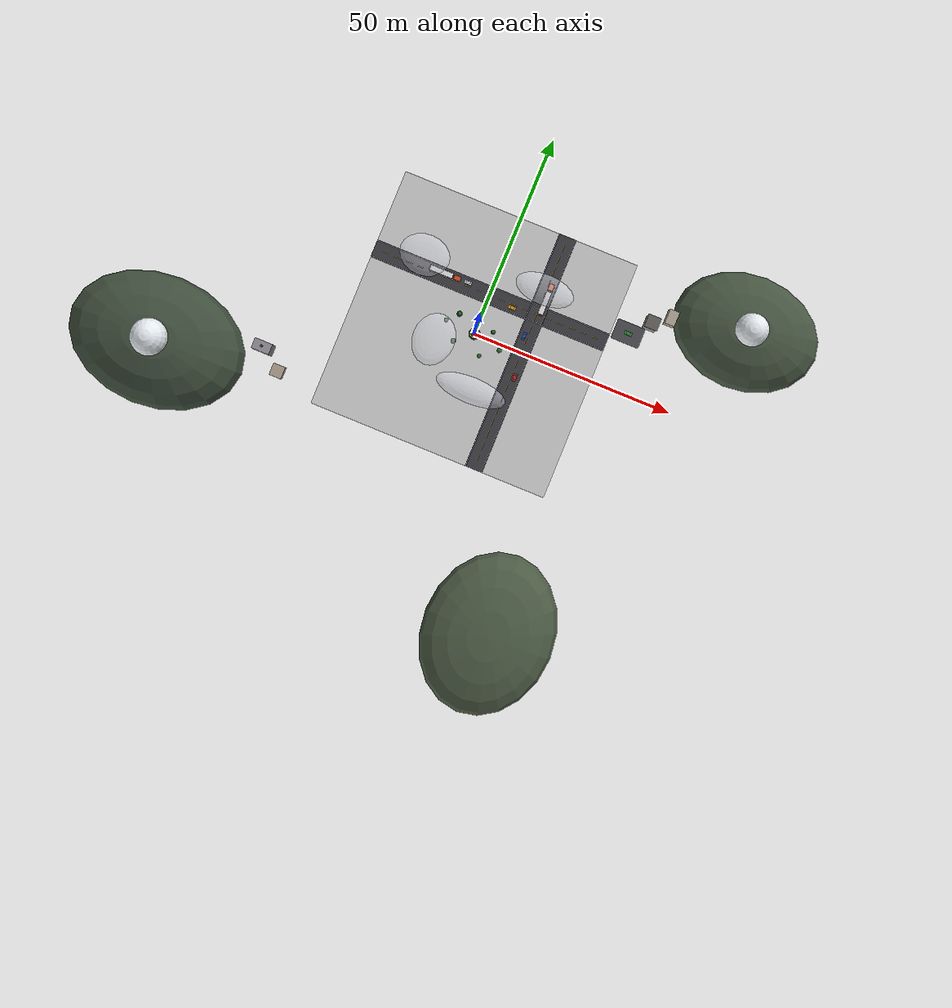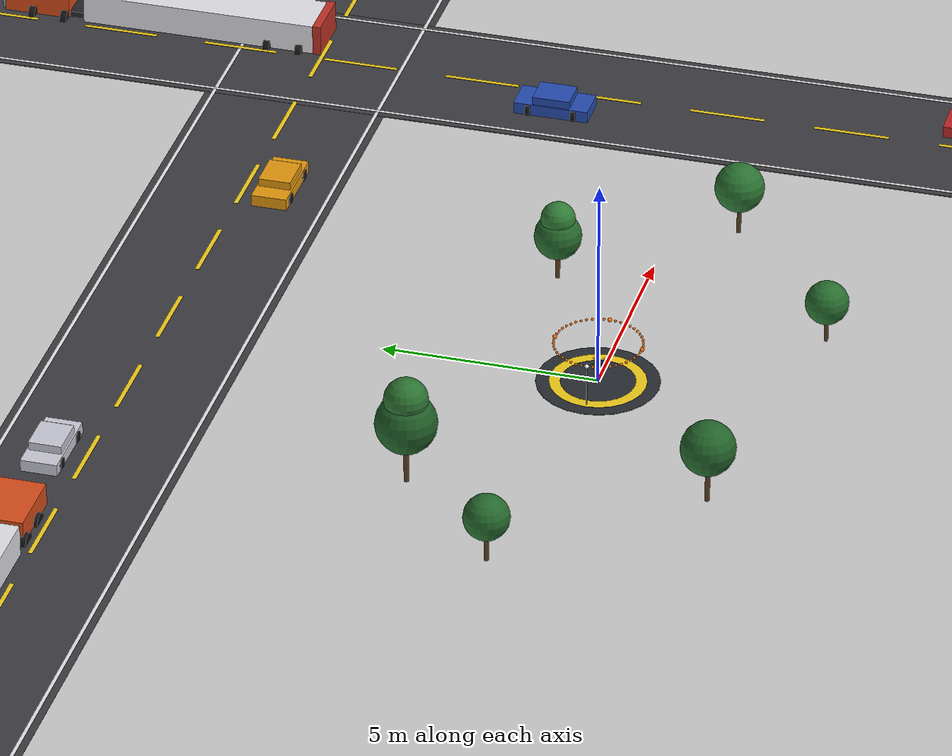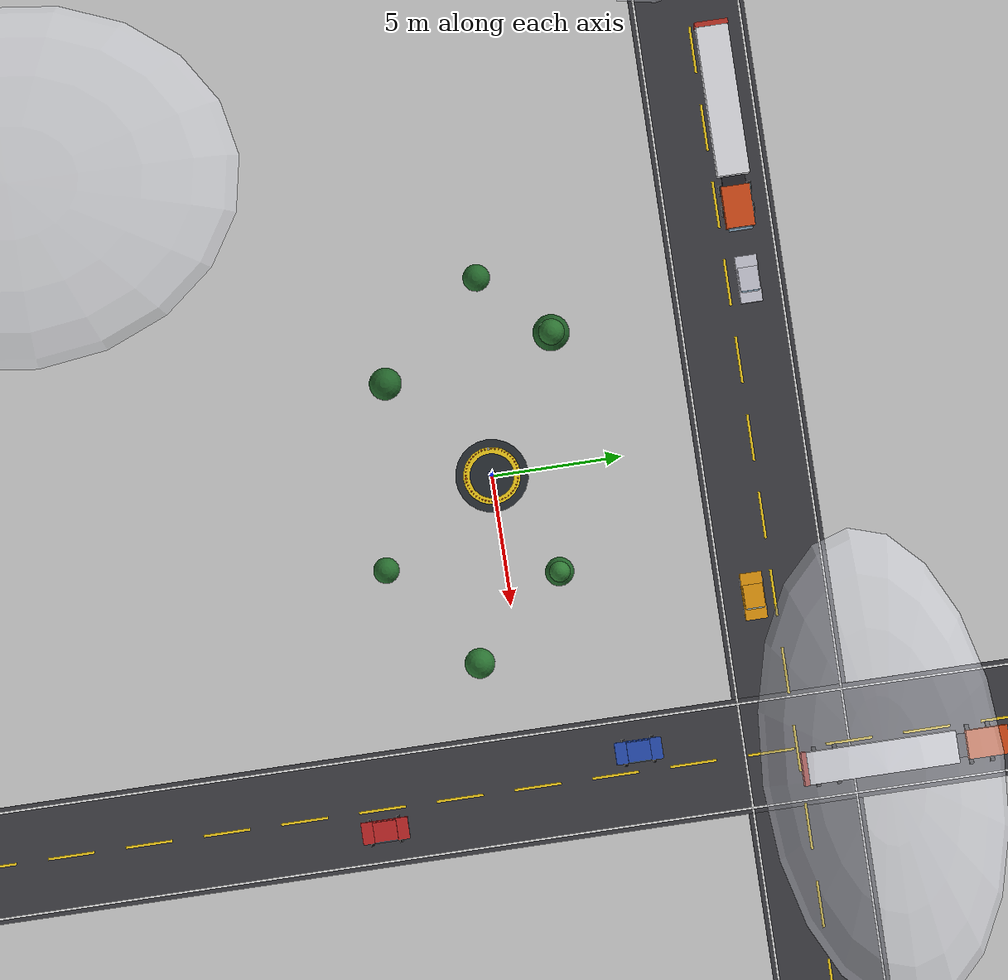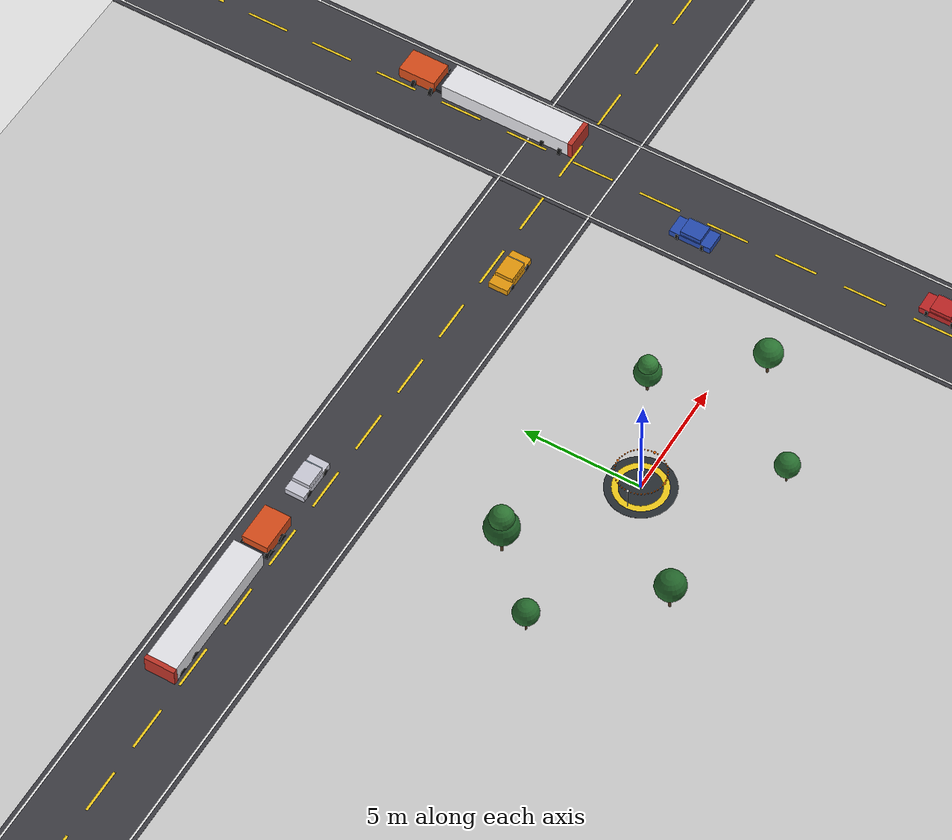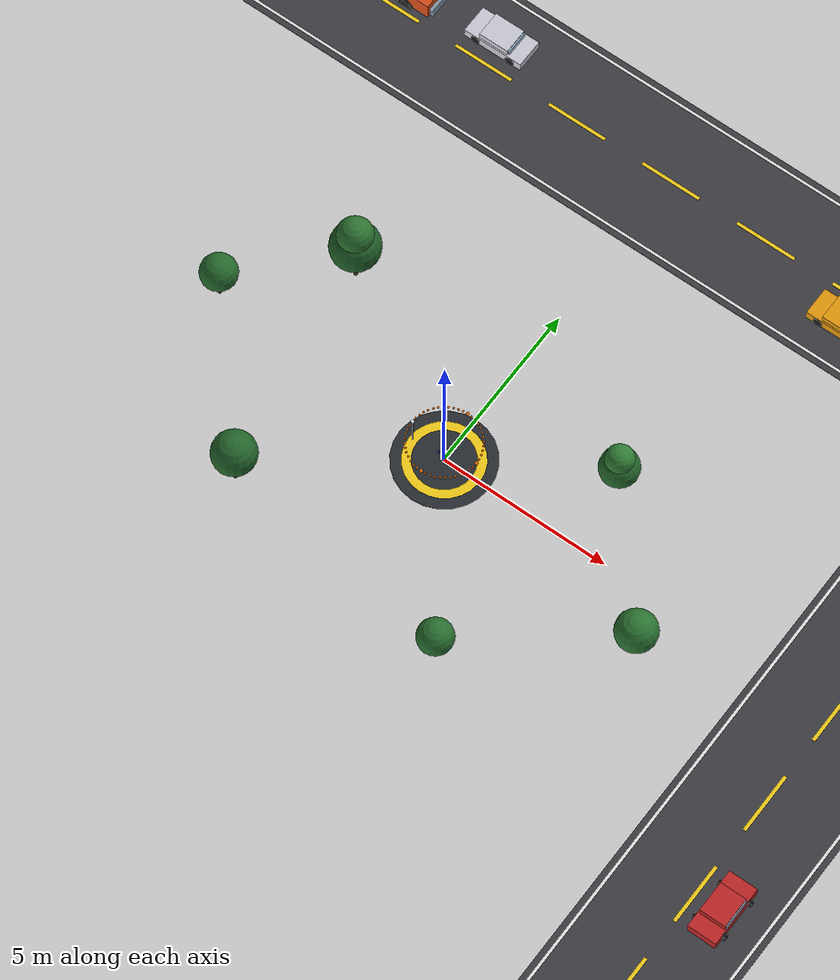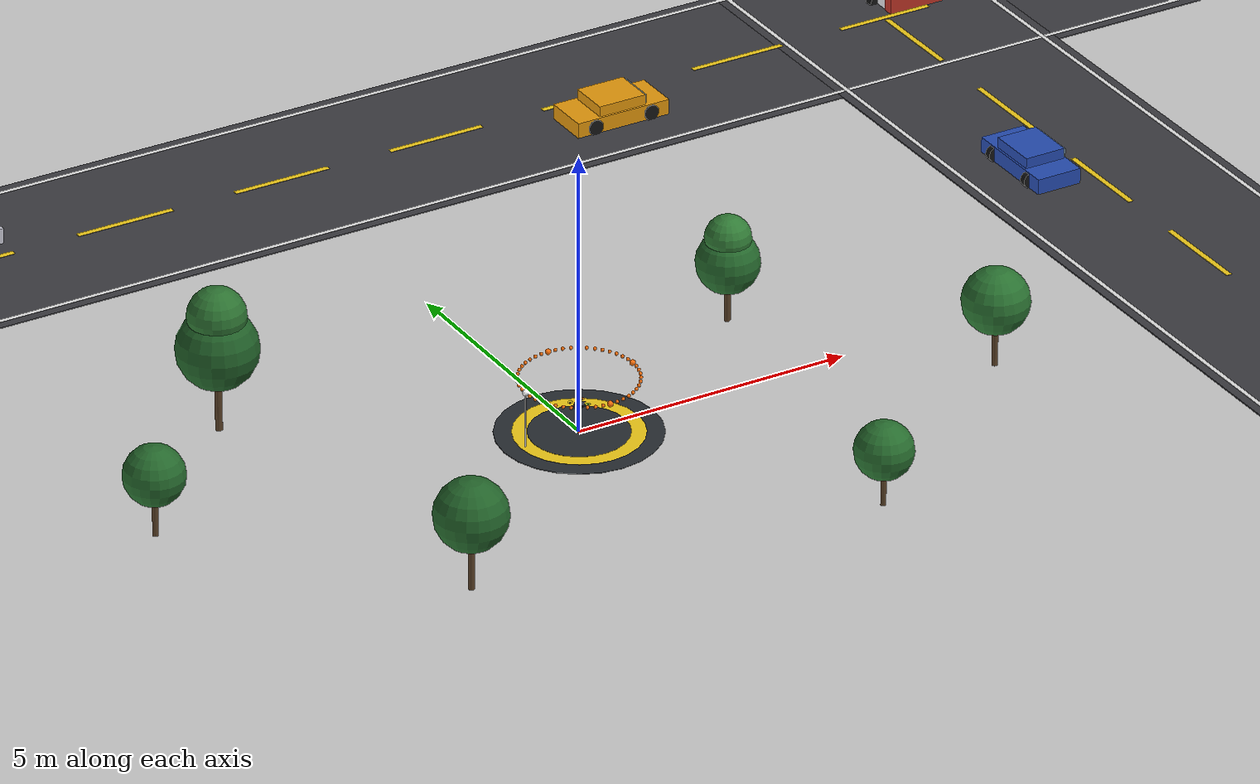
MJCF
<mujoco model="flatness_circle_scene">
  <include file="../sim/mujoco/quadrotor.xml"/>
  <worldbody>
    <!-- start point marker (-1, 0): white pole + cap -->
    <geom name="start_pole" type="cylinder" size="0.015 0.5" pos="-1 0 0.5" rgba="0.9 0.9 0.9 1" contype="0" conaffinity="0"/>
    <geom name="start_cap" type="sphere" size="0.05" pos="-1 0 1.0" rgba="1 1 1 1" contype="0" conaffinity="0"/>
    <!-- reference circle, radius 1 m at altitude 1 m -->
    <geom name="ref_c0" type="sphere" pos="-1.0000 0.0000 1.0" size="0.05" rgba="1 0.45 0.05 1" contype="0" conaffinity="0"/>
    <geom name="ref_c1" type="sphere" pos="-0.9914 0.1305 1.0" size="0.03" rgba="1 0.45 0.05 1" contype="0" conaffinity="0"/>
    <geom name="ref_c2" type="sphere" pos="-0.9659 0.2588 1.0" size="0.03" rgba="1 0.45 0.05 1" contype="0" conaffinity="0"/>
    <geom name="ref_c3" type="sphere" pos="-0.9239 0.3827 1.0" size="0.03" rgba="1 0.45 0.05 1" contype="0" conaffinity="0"/>
    <geom name="ref_c4" type="sphere" pos="-0.8660 0.5000 1.0" size="0.03" rgba="1 0.45 0.05 1" contype="0" conaffinity="0"/>
    <geom name="ref_c5" type="sphere" pos="-0.7934 0.6088 1.0" size="0.03" rgba="1 0.45 0.05 1" contype="0" conaffinity="0"/>
    <geom name="ref_c6" type="sphere" pos="-0.7071 0.7071 1.0" size="0.03" rgba="1 0.45 0.05 1" contype="0" conaffinity="0"/>
    <geom name="ref_c7" type="sphere" pos="-0.6088 0.7934 1.0" size="0.03" rgba="1 0.45 0.05 1" contype="0" conaffinity="0"/>
    <geom name="ref_c8" type="sphere" pos="-0.5000 0.8660 1.0" size="0.03" rgba="1 0.45 0.05 1" contype="0" conaffinity="0"/>
    <geom name="ref_c9" type="sphere" pos="-0.3827 0.9239 1.0" size="0.03" rgba="1 0.45 0.05 1" contype="0" conaffinity="0"/>
    <geom name="ref_c10" type="sphere" pos="-0.2588 0.9659 1.0" size="0.03" rgba="1 0.45 0.05 1" contype="0" conaffinity="0"/>
    <geom name="ref_c11" type="sphere" pos="-0.1305 0.9914 1.0" size="0.03" rgba="1 0.45 0.05 1" contype="0" conaffinity="0"/>
    <geom name="ref_c12" type="sphere" pos="-0.0000 1.0000 1.0" size="0.05" rgba="1 0.45 0.05 1" contype="0" conaffinity="0"/>
    <geom name="ref_c13" type="sphere" pos="0.1305 0.9914 1.0" size="0.03" rgba="1 0.45 0.05 1" contype="0" conaffinity="0"/>
    <geom name="ref_c14" type="sphere" pos="0.2588 0.9659 1.0" size="0.03" rgba="1 0.45 0.05 1" contype="0" conaffinity="0"/>
    <geom name="ref_c15" type="sphere" pos="0.3827 0.9239 1.0" size="0.03" rgba="1 0.45 0.05 1" contype="0" conaffinity="0"/>
    <geom name="ref_c16" type="sphere" pos="0.5000 0.8660 1.0" size="0.03" rgba="1 0.45 0.05 1" contype="0" conaffinity="0"/>
    <geom name="ref_c17" type="sphere" pos="0.6088 0.7934 1.0" size="0.03" rgba="1 0.45 0.05 1" contype="0" conaffinity="0"/>
    <geom name="ref_c18" type="sphere" pos="0.7071 0.7071 1.0" size="0.03" rgba="1 0.45 0.05 1" contype="0" conaffinity="0"/>
    <geom name="ref_c19" type="sphere" pos="0.7934 0.6088 1.0" size="0.03" rgba="1 0.45 0.05 1" contype="0" conaffinity="0"/>
    <geom name="ref_c20" type="sphere" pos="0.8660 0.5000 1.0" size="0.03" rgba="1 0.45 0.05 1" contype="0" conaffinity="0"/>
    <geom name="ref_c21" type="sphere" pos="0.9239 0.3827 1.0" size="0.03" rgba="1 0.45 0.05 1" contype="0" conaffinity="0"/>
    <geom name="ref_c22" type="sphere" pos="0.9659 0.2588 1.0" size="0.03" rgba="1 0.45 0.05 1" contype="0" conaffinity="0"/>
    <geom name="ref_c23" type="sphere" pos="0.9914 0.1305 1.0" size="0.03" rgba="1 0.45 0.05 1" contype="0" conaffinity="0"/>
    <geom name="ref_c24" type="sphere" pos="1.0000 0.0000 1.0" size="0.05" rgba="1 0.45 0.05 1" contype="0" conaffinity="0"/>
    <geom name="ref_c25" type="sphere" pos="0.9914 -0.1305 1.0" size="0.03" rgba="1 0.45 0.05 1" contype="0" conaffinity="0"/>
    <geom name="ref_c26" type="sphere" pos="0.9659 -0.2588 1.0" size="0.03" rgba="1 0.45 0.05 1" contype="0" conaffinity="0"/>
    <geom name="ref_c27" type="sphere" pos="0.9239 -0.3827 1.0" size="0.03" rgba="1 0.45 0.05 1" contype="0" conaffinity="0"/>
    <geom name="ref_c28" type="sphere" pos="0.8660 -0.5000 1.0" size="0.03" rgba="1 0.45 0.05 1" contype="0" conaffinity="0"/>
    <geom name="ref_c29" type="sphere" pos="0.7934 -0.6088 1.0" size="0.03" rgba="1 0.45 0.05 1" contype="0" conaffinity="0"/>
    <geom name="ref_c30" type="sphere" pos="0.7071 -0.7071 1.0" size="0.03" rgba="1 0.45 0.05 1" contype="0" conaffinity="0"/>
    <geom name="ref_c31" type="sphere" pos="0.6088 -0.7934 1.0" size="0.03" rgba="1 0.45 0.05 1" contype="0" conaffinity="0"/>
    <geom name="ref_c32" type="sphere" pos="0.5000 -0.8660 1.0" size="0.03" rgba="1 0.45 0.05 1" contype="0" conaffinity="0"/>
    <geom name="ref_c33" type="sphere" pos="0.3827 -0.9239 1.0" size="0.03" rgba="1 0.45 0.05 1" contype="0" conaffinity="0"/>
    <geom name="ref_c34" type="sphere" pos="0.2588 -0.9659 1.0" size="0.03" rgba="1 0.45 0.05 1" contype="0" conaffinity="0"/>
    <geom name="ref_c35" type="sphere" pos="0.1305 -0.9914 1.0" size="0.03" rgba="1 0.45 0.05 1" contype="0" conaffinity="0"/>
    <geom name="ref_c36" type="sphere" pos="0.0000 -1.0000 1.0" size="0.05" rgba="1 0.45 0.05 1" contype="0" conaffinity="0"/>
    <geom name="ref_c37" type="sphere" pos="-0.1305 -0.9914 1.0" size="0.03" rgba="1 0.45 0.05 1" contype="0" conaffinity="0"/>
    <geom name="ref_c38" type="sphere" pos="-0.2588 -0.9659 1.0" size="0.03" rgba="1 0.45 0.05 1" contype="0" conaffinity="0"/>
    <geom name="ref_c39" type="sphere" pos="-0.3827 -0.9239 1.0" size="0.03" rgba="1 0.45 0.05 1" contype="0" conaffinity="0"/>
    <geom name="ref_c40" type="sphere" pos="-0.5000 -0.8660 1.0" size="0.03" rgba="1 0.45 0.05 1" contype="0" conaffinity="0"/>
    <geom name="ref_c41" type="sphere" pos="-0.6088 -0.7934 1.0" size="0.03" rgba="1 0.45 0.05 1" contype="0" conaffinity="0"/>
    <geom name="ref_c42" type="sphere" pos="-0.7071 -0.7071 1.0" size="0.03" rgba="1 0.45 0.05 1" contype="0" conaffinity="0"/>
    <geom name="ref_c43" type="sphere" pos="-0.7934 -0.6088 1.0" size="0.03" rgba="1 0.45 0.05 1" contype="0" conaffinity="0"/>
    <geom name="ref_c44" type="sphere" pos="-0.8660 -0.5000 1.0" size="0.03" rgba="1 0.45 0.05 1" contype="0" conaffinity="0"/>
    <geom name="ref_c45" type="sphere" pos="-0.9239 -0.3827 1.0" size="0.03" rgba="1 0.45 0.05 1" contype="0" conaffinity="0"/>
    <geom name="ref_c46" type="sphere" pos="-0.9659 -0.2588 1.0" size="0.03" rgba="1 0.45 0.05 1" contype="0" conaffinity="0"/>
    <geom name="ref_c47" type="sphere" pos="-0.9914 -0.1305 1.0" size="0.03" rgba="1 0.45 0.05 1" contype="0" conaffinity="0"/>
  </worldbody>
</mujoco>

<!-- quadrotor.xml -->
<mujoco model="paper_quadrotor">
  <option timestep="5e-5" gravity="0 0 -9.81" integrator="implicitfast"/>

  <visual>
    <headlight ambient="0.35 0.35 0.35" diffuse="0.55 0.55 0.55" specular="0.15 0.15 0.15"/>
    <global offwidth="1920" offheight="1080"/>
    <map znear="0.01" zfar="60"/>
  </visual>

  <asset>
    <texture type="skybox" builtin="gradient" rgb1="0.45 0.55 0.75" rgb2="0.9 0.9 0.95" width="256" height="256"/>
    <texture name="floorcheck" type="2d" builtin="checker" rgb1="0.32 0.36 0.32" rgb2="0.52 0.56 0.52" width="300" height="300"/>
    <material name="floormat" texture="floorcheck" texrepeat="8 8" specular="0.1" shininess="0.2"/>
  </asset>

  <worldbody>
    <light directional="true" castshadow="true" pos="2 2 5" dir="0 0 -1"/>

    <geom name="floor" type="plane" size="30 30 0.1" material="floormat"
          rgba="0.8 0.8 0.8 1" friction="1.0 0.5 0.5"/>

    <!-- helipad under the spawn point -->
    <geom name="pad_base" type="cylinder" size="1.4 0.005" pos="0 0 0.003"
          rgba="0.16 0.18 0.2 1" contype="0" conaffinity="0"/>
    <geom name="pad_ring" type="cylinder" size="1.1 0.006" pos="0 0 0.004"
          rgba="0.95 0.8 0.1 1" contype="0" conaffinity="0"/>
    <geom name="pad_inner" type="cylinder" size="0.85 0.007" pos="0 0 0.005"
          rgba="0.16 0.18 0.2 1" contype="0" conaffinity="0"/>

    <!-- trees: trunk + two foliage blobs, scattered clear of the pad -->
    <geom name="t1t" type="cylinder" size="0.05 0.5" pos="4 2 0.5" rgba="0.35 0.25 0.15 1" contype="0" conaffinity="0"/>
    <geom name="t1f1" type="sphere" size="0.55" pos="4 2 1.1" rgba="0.15 0.42 0.18 1" contype="0" conaffinity="0"/>
    <geom name="t1f2" type="sphere" size="0.4" pos="4 2 1.55" rgba="0.2 0.5 0.22 1" contype="0" conaffinity="0"/>
    <geom name="t2t" type="cylinder" size="0.06 0.7" pos="-5 3 0.7" rgba="0.35 0.25 0.15 1" contype="0" conaffinity="0"/>
    <geom name="t2f1" type="sphere" size="0.7" pos="-5 3 1.5" rgba="0.13 0.38 0.16 1" contype="0" conaffinity="0"/>
    <geom name="t2f2" type="sphere" size="0.5" pos="-5 3 2.1" rgba="0.18 0.46 0.2 1" contype="0" conaffinity="0"/>
    <geom name="t3t" type="cylinder" size="0.045 0.45" pos="3 -4.5 0.45" rgba="0.35 0.25 0.15 1" contype="0" conaffinity="0"/>
    <geom name="t3f1" type="sphere" size="0.5" pos="3 -4.5 1.0" rgba="0.16 0.44 0.19 1" contype="0" conaffinity="0"/>
    <geom name="t4t" type="cylinder" size="0.055 0.6" pos="-4 -3.5 0.6" rgba="0.35 0.25 0.15 1" contype="0" conaffinity="0"/>
    <geom name="t4f1" type="sphere" size="0.62" pos="-4 -3.5 1.35" rgba="0.14 0.4 0.17 1" contype="0" conaffinity="0"/>
    <geom name="t5t" type="cylinder" size="0.05 0.55" pos="7 -1.5 0.55" rgba="0.35 0.25 0.15 1" contype="0" conaffinity="0"/>
    <geom name="t5f1" type="sphere" size="0.58" pos="7 -1.5 1.2" rgba="0.17 0.46 0.2 1" contype="0" conaffinity="0"/>
    <geom name="t6t" type="cylinder" size="0.05 0.5" pos="-7.5 0.5 0.5" rgba="0.35 0.25 0.15 1" contype="0" conaffinity="0"/>
    <geom name="t6f1" type="sphere" size="0.52" pos="-7.5 0.5 1.1" rgba="0.15 0.42 0.18 1" contype="0" conaffinity="0"/>

    <!-- distant hills with snow caps -->
    <geom name="hill1" type="ellipsoid" size="18 14 7" pos="60 25 -1" rgba="0.28 0.34 0.26 1" contype="0" conaffinity="0"/>
    <geom name="hill1s" type="sphere" size="4" pos="60 25 6.0" rgba="0.92 0.94 0.96 1" contype="0" conaffinity="0"/>
    <geom name="hill2" type="ellipsoid" size="22 16 9" pos="-70 -30 -1" rgba="0.25 0.31 0.24 1" contype="0" conaffinity="0"/>
    <geom name="hill2s" type="sphere" size="4.5" pos="-70 -30 7.8" rgba="0.92 0.94 0.96 1" contype="0" conaffinity="0"/>
    <geom name="hill3" type="ellipsoid" size="16 20 6" pos="30 -65 -1" rgba="0.3 0.36 0.27 1" contype="0" conaffinity="0"/>

    <!-- small town on the hillside -->
    <geom name="b1" type="box" size="1.5 1.5 2.2" pos="38 18 2.2" rgba="0.62 0.6 0.58 1" contype="0" conaffinity="0"/>
    <geom name="b1r" type="box" size="1.6 1.6 0.2" pos="38 18 4.5" rgba="0.4 0.38 0.36 1" contype="0" conaffinity="0"/>
    <geom name="b2" type="box" size="1.2 1.8 1.6" pos="42 21 1.6" rgba="0.7 0.66 0.6 1" contype="0" conaffinity="0"/>
    <geom name="b3" type="box" size="2.2 1.3 3.2" pos="-45 -22 3.2" rgba="0.58 0.56 0.6 1" contype="0" conaffinity="0"/>
    <geom name="b3r" type="cylinder" size="0.25 1.0" pos="-45 -22 6.9" rgba="0.35 0.35 0.38 1" contype="0" conaffinity="0"/>
    <geom name="b4" type="box" size="1.5 1.5 1.2" pos="-40 -26 1.2" rgba="0.68 0.62 0.55 1" contype="0" conaffinity="0"/>

    <!-- clouds (semi-transparent, high up -- the flip scenario flies through them) -->
    <geom name="c1" type="ellipsoid" size="6 3 1.2" pos="10 8 58" rgba="0.95 0.96 1 0.45" contype="0" conaffinity="0"/>
    <geom name="c2" type="ellipsoid" size="5 4 1" pos="-14 5 62" rgba="0.95 0.96 1 0.4" contype="0" conaffinity="0"/>
    <geom name="c3" type="ellipsoid" size="7 2.5 1.3" pos="4 -16 66" rgba="0.94 0.95 1 0.42" contype="0" conaffinity="0"/>
    <geom name="c4" type="ellipsoid" size="4 5 1.1" pos="-6 -10 70" rgba="0.95 0.96 1 0.38" contype="0" conaffinity="0"/>

        <!-- ===== roads, cars, trucks (visual-only) ===== -->
    <geom name="road_main" type="box" size="2.2 30 0.01" pos="12 0 0.008" rgba="0.24 0.24 0.26 1" contype="0" conaffinity="0" />
    <geom name="road_cross" type="box" size="30 2.2 0.009" pos="0 10 0.007" rgba="0.24 0.24 0.26 1" contype="0" conaffinity="0" />
    <geom name="road_m_l" type="box" size="0.04 30 0.012" pos="10.0 0 0.012" rgba="0.9 0.9 0.9 1" contype="0" conaffinity="0" />
    <geom name="road_m_r" type="box" size="0.04 30 0.012" pos="14.0 0 0.012" rgba="0.9 0.9 0.9 1" contype="0" conaffinity="0" />
    <geom name="road_c_f" type="box" size="30 0.04 0.011" pos="0 8.0 0.011" rgba="0.9 0.9 0.9 1" contype="0" conaffinity="0" />
    <geom name="road_c_n" type="box" size="30 0.04 0.011" pos="0 12.0 0.011" rgba="0.9 0.9 0.9 1" contype="0" conaffinity="0" />
    <geom name="dash_m-9" type="box" size="0.05 0.9 0.013" pos="12 -27 0.013" rgba="0.95 0.8 0.1 1" contype="0" conaffinity="0" />
    <geom name="dash_c-9" type="box" size="0.9 0.05 0.012" pos="-27 10 0.012" rgba="0.95 0.8 0.1 1" contype="0" conaffinity="0" />
    <geom name="dash_m-8" type="box" size="0.05 0.9 0.013" pos="12 -24 0.013" rgba="0.95 0.8 0.1 1" contype="0" conaffinity="0" />
    <geom name="dash_c-8" type="box" size="0.9 0.05 0.012" pos="-24 10 0.012" rgba="0.95 0.8 0.1 1" contype="0" conaffinity="0" />
    <geom name="dash_m-7" type="box" size="0.05 0.9 0.013" pos="12 -21 0.013" rgba="0.95 0.8 0.1 1" contype="0" conaffinity="0" />
    <geom name="dash_c-7" type="box" size="0.9 0.05 0.012" pos="-21 10 0.012" rgba="0.95 0.8 0.1 1" contype="0" conaffinity="0" />
    <geom name="dash_m-6" type="box" size="0.05 0.9 0.013" pos="12 -18 0.013" rgba="0.95 0.8 0.1 1" contype="0" conaffinity="0" />
    <geom name="dash_c-6" type="box" size="0.9 0.05 0.012" pos="-18 10 0.012" rgba="0.95 0.8 0.1 1" contype="0" conaffinity="0" />
    <geom name="dash_m-5" type="box" size="0.05 0.9 0.013" pos="12 -15 0.013" rgba="0.95 0.8 0.1 1" contype="0" conaffinity="0" />
    <geom name="dash_c-5" type="box" size="0.9 0.05 0.012" pos="-15 10 0.012" rgba="0.95 0.8 0.1 1" contype="0" conaffinity="0" />
    <geom name="dash_m-4" type="box" size="0.05 0.9 0.013" pos="12 -12 0.013" rgba="0.95 0.8 0.1 1" contype="0" conaffinity="0" />
    <geom name="dash_c-4" type="box" size="0.9 0.05 0.012" pos="-12 10 0.012" rgba="0.95 0.8 0.1 1" contype="0" conaffinity="0" />
    <geom name="dash_m-3" type="box" size="0.05 0.9 0.013" pos="12 -9 0.013" rgba="0.95 0.8 0.1 1" contype="0" conaffinity="0" />
    <geom name="dash_c-3" type="box" size="0.9 0.05 0.012" pos="-9 10 0.012" rgba="0.95 0.8 0.1 1" contype="0" conaffinity="0" />
    <geom name="dash_m-2" type="box" size="0.05 0.9 0.013" pos="12 -6 0.013" rgba="0.95 0.8 0.1 1" contype="0" conaffinity="0" />
    <geom name="dash_c-2" type="box" size="0.9 0.05 0.012" pos="-6 10 0.012" rgba="0.95 0.8 0.1 1" contype="0" conaffinity="0" />
    <geom name="dash_m-1" type="box" size="0.05 0.9 0.013" pos="12 -3 0.013" rgba="0.95 0.8 0.1 1" contype="0" conaffinity="0" />
    <geom name="dash_c-1" type="box" size="0.9 0.05 0.012" pos="-3 10 0.012" rgba="0.95 0.8 0.1 1" contype="0" conaffinity="0" />
    <geom name="dash_m0" type="box" size="0.05 0.9 0.013" pos="12 0 0.013" rgba="0.95 0.8 0.1 1" contype="0" conaffinity="0" />
    <geom name="dash_c0" type="box" size="0.9 0.05 0.012" pos="0 10 0.012" rgba="0.95 0.8 0.1 1" contype="0" conaffinity="0" />
    <geom name="dash_m1" type="box" size="0.05 0.9 0.013" pos="12 3 0.013" rgba="0.95 0.8 0.1 1" contype="0" conaffinity="0" />
    <geom name="dash_c1" type="box" size="0.9 0.05 0.012" pos="3 10 0.012" rgba="0.95 0.8 0.1 1" contype="0" conaffinity="0" />
    <geom name="dash_m2" type="box" size="0.05 0.9 0.013" pos="12 6 0.013" rgba="0.95 0.8 0.1 1" contype="0" conaffinity="0" />
    <geom name="dash_c2" type="box" size="0.9 0.05 0.012" pos="6 10 0.012" rgba="0.95 0.8 0.1 1" contype="0" conaffinity="0" />
    <geom name="dash_m3" type="box" size="0.05 0.9 0.013" pos="12 9 0.013" rgba="0.95 0.8 0.1 1" contype="0" conaffinity="0" />
    <geom name="dash_c3" type="box" size="0.9 0.05 0.012" pos="9 10 0.012" rgba="0.95 0.8 0.1 1" contype="0" conaffinity="0" />
    <geom name="dash_m4" type="box" size="0.05 0.9 0.013" pos="12 12 0.013" rgba="0.95 0.8 0.1 1" contype="0" conaffinity="0" />
    <geom name="dash_c4" type="box" size="0.9 0.05 0.012" pos="12 10 0.012" rgba="0.95 0.8 0.1 1" contype="0" conaffinity="0" />
    <geom name="dash_m5" type="box" size="0.05 0.9 0.013" pos="12 15 0.013" rgba="0.95 0.8 0.1 1" contype="0" conaffinity="0" />
    <geom name="dash_c5" type="box" size="0.9 0.05 0.012" pos="15 10 0.012" rgba="0.95 0.8 0.1 1" contype="0" conaffinity="0" />
    <geom name="dash_m6" type="box" size="0.05 0.9 0.013" pos="12 18 0.013" rgba="0.95 0.8 0.1 1" contype="0" conaffinity="0" />
    <geom name="dash_c6" type="box" size="0.9 0.05 0.012" pos="18 10 0.012" rgba="0.95 0.8 0.1 1" contype="0" conaffinity="0" />
    <geom name="dash_m7" type="box" size="0.05 0.9 0.013" pos="12 21 0.013" rgba="0.95 0.8 0.1 1" contype="0" conaffinity="0" />
    <geom name="dash_c7" type="box" size="0.9 0.05 0.012" pos="21 10 0.012" rgba="0.95 0.8 0.1 1" contype="0" conaffinity="0" />
    <geom name="dash_m8" type="box" size="0.05 0.9 0.013" pos="12 24 0.013" rgba="0.95 0.8 0.1 1" contype="0" conaffinity="0" />
    <geom name="dash_c8" type="box" size="0.9 0.05 0.012" pos="24 10 0.012" rgba="0.95 0.8 0.1 1" contype="0" conaffinity="0" />
    <geom name="dash_m9" type="box" size="0.05 0.9 0.013" pos="12 27 0.013" rgba="0.95 0.8 0.1 1" contype="0" conaffinity="0" />
    <geom name="dash_c9" type="box" size="0.9 0.05 0.012" pos="27 10 0.012" rgba="0.95 0.8 0.1 1" contype="0" conaffinity="0" />
    <geom name="lot" type="box" size="3.5 2.5 0.006" pos="34 14 0.006" rgba="0.3 0.3 0.32 1" contype="0" conaffinity="0" />
    <geom name="car1_body" type="box" size="0.9 0.42 0.14" pos="12.8 -6 0.16" rgba="0.75 0.15 0.15 1" contype="0" conaffinity="0" euler="0 0 90"/>
    <geom name="car1_cabin" type="box" size="0.45 0.38 0.13" pos="12.8 -6 0.36" rgba="0.75 0.15 0.15 1" contype="0" conaffinity="0" euler="0 0 90"/>
    <geom name="car1_glass" type="box" size="0.42 0.34 0.09" pos="12.88 -6 0.37" rgba="0.6 0.75 0.85 0.8" contype="0" conaffinity="0" euler="0 0 90"/>
    <geom name="car1_w0" type="cylinder" size="0.14 0.06" pos="12.42 -5.45 0.14" rgba="0.08 0.08 0.08 1" contype="0" conaffinity="0" euler="90 0 0"/>
    <geom name="car1_w1" type="cylinder" size="0.14 0.06" pos="13.180000000000001 -5.45 0.14" rgba="0.08 0.08 0.08 1" contype="0" conaffinity="0" euler="90 0 0"/>
    <geom name="car1_w2" type="cylinder" size="0.14 0.06" pos="12.42 -6.55 0.14" rgba="0.08 0.08 0.08 1" contype="0" conaffinity="0" euler="90 0 0"/>
    <geom name="car1_w3" type="cylinder" size="0.14 0.06" pos="13.180000000000001 -6.55 0.14" rgba="0.08 0.08 0.08 1" contype="0" conaffinity="0" euler="90 0 0"/>
    <geom name="car2_body" type="box" size="0.9 0.42 0.14" pos="11.2 4 0.16" rgba="0.15 0.3 0.7 1" contype="0" conaffinity="0" euler="0 0 -90"/>
    <geom name="car2_cabin" type="box" size="0.45 0.38 0.13" pos="11.2 4 0.36" rgba="0.15 0.3 0.7 1" contype="0" conaffinity="0" euler="0 0 -90"/>
    <geom name="car2_glass" type="box" size="0.42 0.34 0.09" pos="11.28 4 0.37" rgba="0.6 0.75 0.85 0.8" contype="0" conaffinity="0" euler="0 0 -90"/>
    <geom name="car2_w0" type="cylinder" size="0.14 0.06" pos="11.58 3.45 0.14" rgba="0.08 0.08 0.08 1" contype="0" conaffinity="0" euler="90 0 0"/>
    <geom name="car2_w1" type="cylinder" size="0.14 0.06" pos="10.819999999999999 3.45 0.14" rgba="0.08 0.08 0.08 1" contype="0" conaffinity="0" euler="90 0 0"/>
    <geom name="car2_w2" type="cylinder" size="0.14 0.06" pos="11.58 4.55 0.14" rgba="0.08 0.08 0.08 1" contype="0" conaffinity="0" euler="90 0 0"/>
    <geom name="car2_w3" type="cylinder" size="0.14 0.06" pos="10.819999999999999 4.55 0.14" rgba="0.08 0.08 0.08 1" contype="0" conaffinity="0" euler="90 0 0"/>
    <geom name="car3_body" type="box" size="0.9 0.42 0.14" pos="34 14 0.16" rgba="0.2 0.55 0.2 1" contype="0" conaffinity="0" euler="0 0 0"/>
    <geom name="car3_cabin" type="box" size="0.45 0.38 0.13" pos="34 14 0.36" rgba="0.2 0.55 0.2 1" contype="0" conaffinity="0" euler="0 0 0"/>
    <geom name="car3_glass" type="box" size="0.42 0.34 0.09" pos="34.08 14 0.37" rgba="0.6 0.75 0.85 0.8" contype="0" conaffinity="0" euler="0 0 0"/>
    <geom name="car3_w0" type="cylinder" size="0.14 0.06" pos="34.55 14.38 0.14" rgba="0.08 0.08 0.08 1" contype="0" conaffinity="0" euler="90 0 0"/>
    <geom name="car3_w1" type="cylinder" size="0.14 0.06" pos="34.55 13.62 0.14" rgba="0.08 0.08 0.08 1" contype="0" conaffinity="0" euler="90 0 0"/>
    <geom name="car3_w2" type="cylinder" size="0.14 0.06" pos="33.45 14.38 0.14" rgba="0.08 0.08 0.08 1" contype="0" conaffinity="0" euler="90 0 0"/>
    <geom name="car3_w3" type="cylinder" size="0.14 0.06" pos="33.45 13.62 0.14" rgba="0.08 0.08 0.08 1" contype="0" conaffinity="0" euler="90 0 0"/>
    <geom name="car4_body" type="box" size="0.9 0.42 0.14" pos="-6 10.8 0.16" rgba="0.8 0.8 0.85 1" contype="0" conaffinity="0" euler="0 0 180"/>
    <geom name="car4_cabin" type="box" size="0.45 0.38 0.13" pos="-6 10.8 0.36" rgba="0.8 0.8 0.85 1" contype="0" conaffinity="0" euler="0 0 180"/>
    <geom name="car4_glass" type="box" size="0.42 0.34 0.09" pos="-5.92 10.8 0.37" rgba="0.6 0.75 0.85 0.8" contype="0" conaffinity="0" euler="0 0 180"/>
    <geom name="car4_w0" type="cylinder" size="0.14 0.06" pos="-6.55 10.42 0.14" rgba="0.08 0.08 0.08 1" contype="0" conaffinity="0" euler="90 0 0"/>
    <geom name="car4_w1" type="cylinder" size="0.14 0.06" pos="-6.55 11.180000000000001 0.14" rgba="0.08 0.08 0.08 1" contype="0" conaffinity="0" euler="90 0 0"/>
    <geom name="car4_w2" type="cylinder" size="0.14 0.06" pos="-5.45 10.42 0.14" rgba="0.08 0.08 0.08 1" contype="0" conaffinity="0" euler="90 0 0"/>
    <geom name="car4_w3" type="cylinder" size="0.14 0.06" pos="-5.45 11.180000000000001 0.14" rgba="0.08 0.08 0.08 1" contype="0" conaffinity="0" euler="90 0 0"/>
    <geom name="car5_body" type="box" size="0.9 0.42 0.14" pos="6 9.2 0.16" rgba="0.9 0.6 0.05 1" contype="0" conaffinity="0" euler="0 0 0"/>
    <geom name="car5_cabin" type="box" size="0.45 0.38 0.13" pos="6 9.2 0.36" rgba="0.9 0.6 0.05 1" contype="0" conaffinity="0" euler="0 0 0"/>
    <geom name="car5_glass" type="box" size="0.42 0.34 0.09" pos="6.08 9.2 0.37" rgba="0.6 0.75 0.85 0.8" contype="0" conaffinity="0" euler="0 0 0"/>
    <geom name="car5_w0" type="cylinder" size="0.14 0.06" pos="6.55 9.58 0.14" rgba="0.08 0.08 0.08 1" contype="0" conaffinity="0" euler="90 0 0"/>
    <geom name="car5_w1" type="cylinder" size="0.14 0.06" pos="6.55 8.819999999999999 0.14" rgba="0.08 0.08 0.08 1" contype="0" conaffinity="0" euler="90 0 0"/>
    <geom name="car5_w2" type="cylinder" size="0.14 0.06" pos="5.45 9.58 0.14" rgba="0.08 0.08 0.08 1" contype="0" conaffinity="0" euler="90 0 0"/>
    <geom name="car5_w3" type="cylinder" size="0.14 0.06" pos="5.45 8.819999999999999 0.14" rgba="0.08 0.08 0.08 1" contype="0" conaffinity="0" euler="90 0 0"/>
    <geom name="truck1_cab" type="box" size="0.8 0.55 0.55" pos="12.800 17.200 0.00" rgba="0.85 0.3 0.1 1" contype="0" conaffinity="0" euler="0 0 90"/>
    <geom name="truck1_glass" type="box" size="0.1 0.45 0.3" pos="12.800 18.000 0.00" rgba="0.6 0.75 0.85 0.8" contype="0" conaffinity="0" euler="0 0 90"/>
    <geom name="truck1_chassis" type="box" size="1.0 0.45 0.15" pos="12.800 16.000 0.00" rgba="0.15 0.15 0.17 1" contype="0" conaffinity="0" euler="0 0 90"/>
    <geom name="truck1_trailer" type="box" size="2.9 0.62 0.75" pos="12.800 13.100 0.00" rgba="0.9 0.9 0.92 1" contype="0" conaffinity="0" euler="0 0 90"/>
    <geom name="truck1_trailer_r" type="box" size="0.1 0.64 0.77" pos="12.800 10.150 0.00" rgba="0.75 0.2 0.15 1" contype="0" conaffinity="0" euler="0 0 90"/>
    <geom name="truck1_w00" type="cylinder" size="0.22 0.08" pos="12.250 17.300 0.00" rgba="0.08 0.08 0.08 1" contype="0" conaffinity="0" euler="90 0 0"/>
    <geom name="truck1_w01" type="cylinder" size="0.22 0.08" pos="13.350 17.300 0.00" rgba="0.08 0.08 0.08 1" contype="0" conaffinity="0" euler="90 0 0"/>
    <geom name="truck1_w10" type="cylinder" size="0.22 0.08" pos="12.250 16.500 0.00" rgba="0.08 0.08 0.08 1" contype="0" conaffinity="0" euler="90 0 0"/>
    <geom name="truck1_w11" type="cylinder" size="0.22 0.08" pos="13.350 16.500 0.00" rgba="0.08 0.08 0.08 1" contype="0" conaffinity="0" euler="90 0 0"/>
    <geom name="truck1_w20" type="cylinder" size="0.22 0.08" pos="12.250 11.400 0.00" rgba="0.08 0.08 0.08 1" contype="0" conaffinity="0" euler="90 0 0"/>
    <geom name="truck1_w21" type="cylinder" size="0.22 0.08" pos="13.350 11.400 0.00" rgba="0.08 0.08 0.08 1" contype="0" conaffinity="0" euler="90 0 0"/>
    <geom name="truck1_w30" type="cylinder" size="0.22 0.08" pos="12.250 10.600 0.00" rgba="0.08 0.08 0.08 1" contype="0" conaffinity="0" euler="90 0 0"/>
    <geom name="truck1_w31" type="cylinder" size="0.22 0.08" pos="13.350 10.600 0.00" rgba="0.08 0.08 0.08 1" contype="0" conaffinity="0" euler="90 0 0"/>
    <geom name="truck2_cab" type="box" size="0.8 0.55 0.55" pos="-8.800 10.800 0.00" rgba="0.85 0.3 0.1 1" contype="0" conaffinity="0" euler="0 0 0"/>
    <geom name="truck2_glass" type="box" size="0.1 0.45 0.3" pos="-8.000 10.800 0.00" rgba="0.6 0.75 0.85 0.8" contype="0" conaffinity="0" euler="0 0 0"/>
    <geom name="truck2_chassis" type="box" size="1.0 0.45 0.15" pos="-10.000 10.800 0.00" rgba="0.15 0.15 0.17 1" contype="0" conaffinity="0" euler="0 0 0"/>
    <geom name="truck2_trailer" type="box" size="2.9 0.62 0.75" pos="-12.900 10.800 0.00" rgba="0.9 0.9 0.92 1" contype="0" conaffinity="0" euler="0 0 0"/>
    <geom name="truck2_trailer_r" type="box" size="0.1 0.64 0.77" pos="-15.850 10.800 0.00" rgba="0.75 0.2 0.15 1" contype="0" conaffinity="0" euler="0 0 0"/>
    <geom name="truck2_w00" type="cylinder" size="0.22 0.08" pos="-8.700 11.350 0.00" rgba="0.08 0.08 0.08 1" contype="0" conaffinity="0" euler="90 0 0"/>
    <geom name="truck2_w01" type="cylinder" size="0.22 0.08" pos="-8.700 10.250 0.00" rgba="0.08 0.08 0.08 1" contype="0" conaffinity="0" euler="90 0 0"/>
    <geom name="truck2_w10" type="cylinder" size="0.22 0.08" pos="-9.500 11.350 0.00" rgba="0.08 0.08 0.08 1" contype="0" conaffinity="0" euler="90 0 0"/>
    <geom name="truck2_w11" type="cylinder" size="0.22 0.08" pos="-9.500 10.250 0.00" rgba="0.08 0.08 0.08 1" contype="0" conaffinity="0" euler="90 0 0"/>
    <geom name="truck2_w20" type="cylinder" size="0.22 0.08" pos="-14.600 11.350 0.00" rgba="0.08 0.08 0.08 1" contype="0" conaffinity="0" euler="90 0 0"/>
    <geom name="truck2_w21" type="cylinder" size="0.22 0.08" pos="-14.600 10.250 0.00" rgba="0.08 0.08 0.08 1" contype="0" conaffinity="0" euler="90 0 0"/>
    <geom name="truck2_w30" type="cylinder" size="0.22 0.08" pos="-15.400 11.350 0.00" rgba="0.08 0.08 0.08 1" contype="0" conaffinity="0" euler="90 0 0"/>
    <geom name="truck2_w31" type="cylinder" size="0.22 0.08" pos="-15.400 10.250 0.00" rgba="0.08 0.08 0.08 1" contype="0" conaffinity="0" euler="90 0 0"/>

<body name="quadrotor" pos="0 0 0.5">
      <freejoint name="root"/>
      <inertial pos="0 0 0" mass="0.2" diaginertia="6.5e-4 6.5e-4 1.2e-3"/>
      <!-- collision frame (physics): thin plate covering the 0.15 m arms.
           group 3 = hidden by default; contacts still active -->
      <geom name="frame" type="box" size="0.17 0.17 0.015" group="3"
            friction="0.8 0.5 0.5"/>

      <!-- ============ visual detail (contype=0 conaffinity=0: no physics) === -->
      <geom name="shell" type="ellipsoid" size="0.085 0.085 0.028" pos="0 0 0.018"
            rgba="0.22 0.24 0.28 1" contype="0" conaffinity="0"/>
      <geom name="plate" type="cylinder" size="0.09 0.008" pos="0 0 -0.004"
            rgba="0.15 0.16 0.18 1" contype="0" conaffinity="0"/>
      <!-- four arms at 45 deg toward the rotor tips -->
      <geom name="arm1" type="box" size="0.075 0.007 0.005" euler="0 0 45"
            pos="0.053033 0.053033 0" rgba="0.28 0.3 0.34 1" contype="0" conaffinity="0"/>
      <geom name="arm2" type="box" size="0.075 0.007 0.005" euler="0 0 -45"
            pos="-0.053033 -0.053033 0" rgba="0.28 0.3 0.34 1" contype="0" conaffinity="0"/>
      <geom name="arm3" type="box" size="0.075 0.007 0.005" euler="0 0 -45"
            pos="0.053033 -0.053033 0" rgba="0.28 0.3 0.34 1" contype="0" conaffinity="0"/>
      <geom name="arm4" type="box" size="0.075 0.007 0.005" euler="0 0 45"
            pos="-0.053033 0.053033 0" rgba="0.28 0.3 0.34 1" contype="0" conaffinity="0"/>
      <!-- nose camera pod (+x is front, between rotors 1 and 3) -->
      <geom name="cam" type="box" size="0.014 0.01 0.008" pos="0.098 0 0.02"
            rgba="0.1 0.1 0.1 1" contype="0" conaffinity="0"/>
      <geom name="lens" type="cylinder" size="0.004 0.006" euler="0 90 0" pos="0.113 0 0.02"
            rgba="0.05 0.08 0.12 1" contype="0" conaffinity="0"/>
      <!-- tail LED -->
      <geom name="led" type="sphere" size="0.006" pos="-0.095 0 0.02"
            rgba="1 0.1 0.1 1" contype="0" conaffinity="0"/>

      <!-- motor mounts + prop-blur discs, one per rotor.
           Order matches sim/common/bridge.py mix_zup:
             1 FR(+d,+d) red   2 RL(-d,-d) blue   3 FL(+d,-d) green   4 RR(-d,+d) yellow -->
      <geom name="mount1" type="cylinder" size="0.011 0.012" pos="0.106066 0.106066 0.014"
            rgba="0.18 0.18 0.2 1" contype="0" conaffinity="0"/>
      <geom name="mount2" type="cylinder" size="0.011 0.012" pos="-0.106066 -0.106066 0.014"
            rgba="0.18 0.18 0.2 1" contype="0" conaffinity="0"/>
      <geom name="mount3" type="cylinder" size="0.011 0.012" pos="0.106066 -0.106066 0.014"
            rgba="0.18 0.18 0.2 1" contype="0" conaffinity="0"/>
      <geom name="mount4" type="cylinder" size="0.011 0.012" pos="-0.106066 0.106066 0.014"
            rgba="0.18 0.18 0.2 1" contype="0" conaffinity="0"/>
      <geom name="prop1" type="cylinder" size="0.045 0.0012" pos="0.106066 0.106066 0.03"
            rgba="0.9 0.2 0.2 0.32" contype="0" conaffinity="0"/>
      <geom name="prop2" type="cylinder" size="0.045 0.0012" pos="-0.106066 -0.106066 0.03"
            rgba="0.2 0.25 0.9 0.32" contype="0" conaffinity="0"/>
      <geom name="prop3" type="cylinder" size="0.045 0.0012" pos="0.106066 -0.106066 0.03"
            rgba="0.2 0.8 0.25 0.32" contype="0" conaffinity="0"/>
      <geom name="prop4" type="cylinder" size="0.045 0.0012" pos="-0.106066 0.106066 0.03"
            rgba="0.95 0.85 0.2 0.32" contype="0" conaffinity="0"/>

      <!-- rotor reference points (massless sites, unchanged from benchmark) -->
      <site name="m1" type="sphere" size="0.004" pos="0.106066 0.106066 0.025" rgba="0.85 0.2 0.2 1"/>
      <site name="m2" type="sphere" size="0.004" pos="-0.106066 -0.106066 0.025" rgba="0.2 0.2 0.85 1"/>
      <site name="m3" type="sphere" size="0.004" pos="0.106066 -0.106066 0.025" rgba="0.2 0.85 0.2 1"/>
      <site name="m4" type="sphere" size="0.004" pos="-0.106066 0.106066 0.025" rgba="0.85 0.85 0.2 1"/>
    </body>
  </worldbody>
</mujoco>
